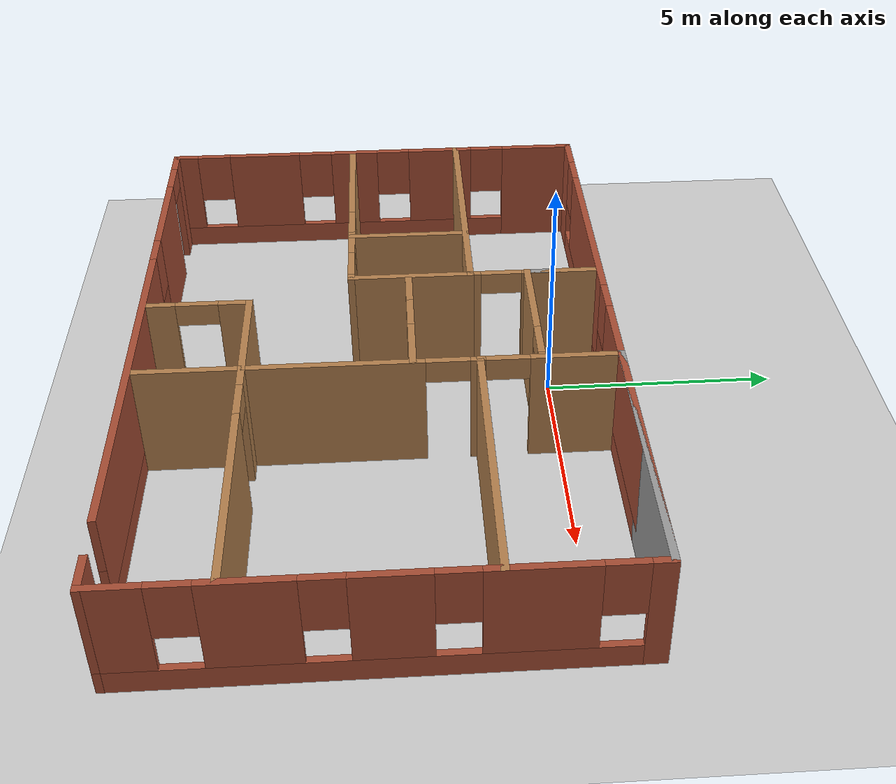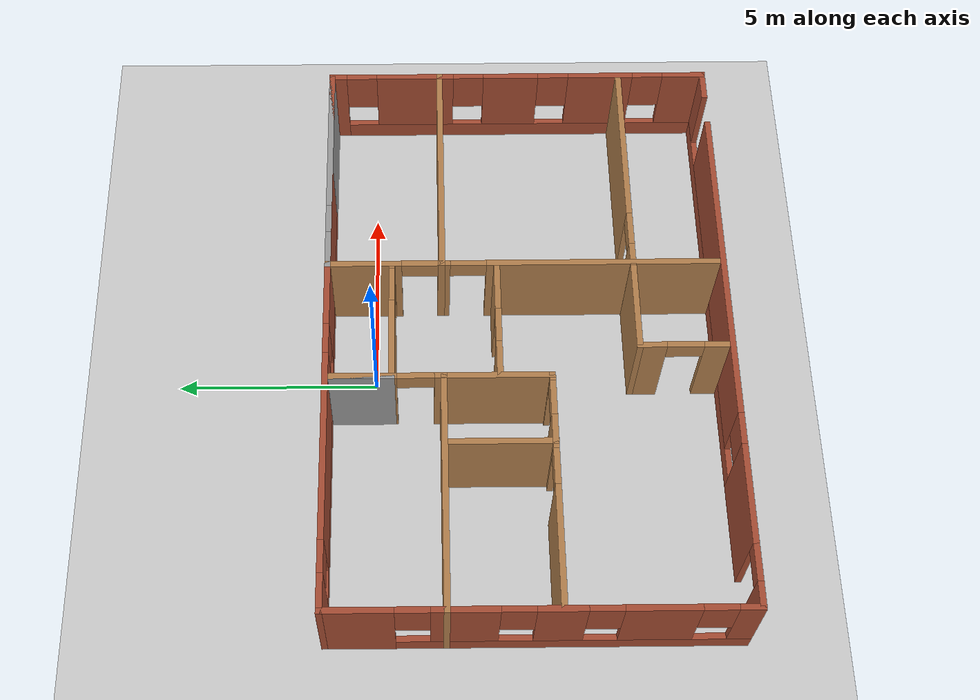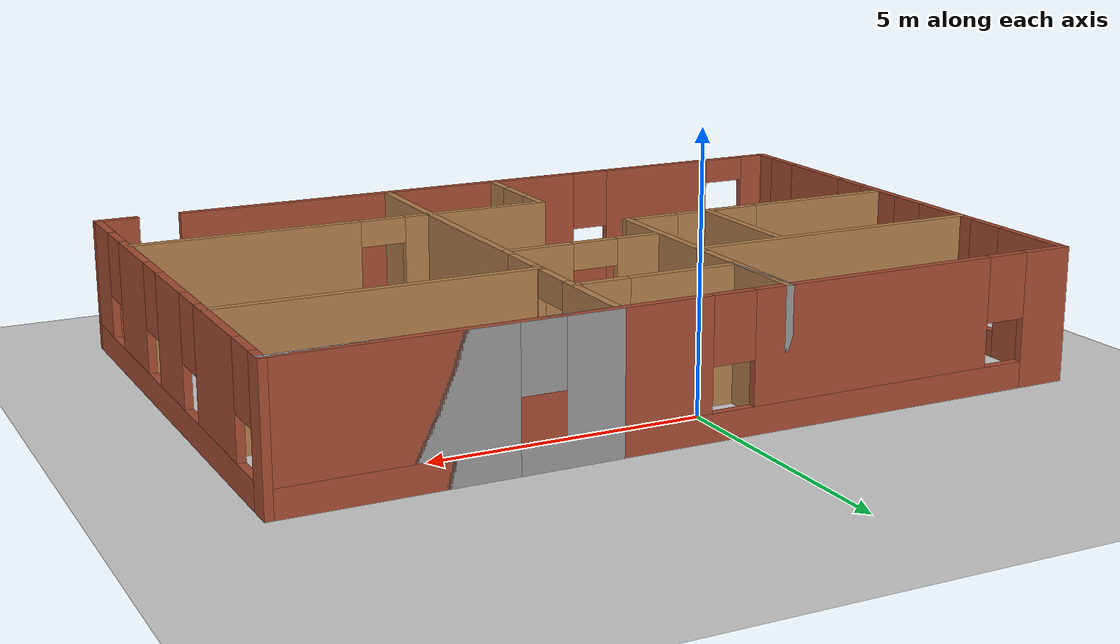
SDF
<sdf version="1.7">
 <world name="default">
  <model name="ground_plane">
   <static>1</static>
   <link name="link">
    <collision name="collision">
     <geometry><plane><normal>0 0 1</normal><size>100 100</size></plane></geometry>
     <surface>
      <contact><collide_bitmask>65535</collide_bitmask></contact>
      <friction><ode><mu>100</mu><mu2>50</mu2></ode></friction>
     </surface>
    </collision>
    <visual name="visual">
     <cast_shadows>0</cast_shadows>
     <geometry><plane><normal>0 0 1</normal><size>100 100</size></plane></geometry>
     <material>
      <script><uri>file://media/materials/scripts/gazebo.material</uri><name>Gazebo/Grey</name></script>
     </material>
    </visual>
   </link>
  </model>
  <model name="building">
   <pose>0.591 -3.76 0 0 -0 0</pose>
   <link name="Wall_0">
    <pose>-7.425 -0 0 0 -0 -1.5708</pose>
    <visual name="Wall_0_Visual_0">
     <pose>-4.12676 0 1.25 0 -0 0</pose>
     <geometry><box><size>1.74647 0.15 2.5</size></box></geometry>
     <material>
      <script><uri>file://media/materials/scripts/gazebo.material</uri><name>Gazebo/Bricks</name></script>
      <ambient>0.913725 0.72549 0.431373 1</ambient>
     </material>
     <meta><layer>0</layer></meta>
    </visual>
    <collision name="Wall_0_Collision_0">
     <geometry><box><size>1.74647 0.15 2.5</size></box></geometry>
     <pose>-4.12676 0 1.25 0 -0 0</pose>
    </collision>
    <visual name="Wall_0_Visual_1">
     <pose>0.873237 0 0.25 0 -0 0</pose>
     <geometry><box><size>8.25353 0.15 0.5</size></box></geometry>
     <material>
      <script><uri>file://media/materials/scripts/gazebo.material</uri><name>Gazebo/Bricks</name></script>
      <ambient>0.913725 0.72549 0.431373 1</ambient>
     </material>
     <meta><layer>0</layer></meta>
    </visual>
    <collision name="Wall_0_Collision_1">
     <geometry><box><size>8.25353 0.15 0.5</size></box></geometry>
     <pose>0.873237 0 0.25 0 -0 0</pose>
    </collision>
    <visual name="Wall_0_Visual_2">
     <pose>-1.66683 0 1.5 0 -0 0</pose>
     <geometry><box><size>1.5734 0.15 2</size></box></geometry>
     <material>
      <script><uri>file://media/materials/scripts/gazebo.material</uri><name>Gazebo/Bricks</name></script>
      <ambient>0.913725 0.72549 0.431373 1</ambient>
     </material>
     <meta><layer>0</layer></meta>
    </visual>
    <collision name="Wall_0_Collision_2">
     <geometry><box><size>1.5734 0.15 2</size></box></geometry>
     <pose>-1.66683 0 1.5 0 -0 0</pose>
    </collision>
    <visual name="Wall_0_Visual_3">
     <pose>0.495383 0 1.5 0 -0 0</pose>
     <geometry><box><size>1.15102 0.15 2</size></box></geometry>
     <material>
      <script><uri>file://media/materials/scripts/gazebo.material</uri><name>Gazebo/Bricks</name></script>
      <ambient>0.913725 0.72549 0.431373 1</ambient>
     </material>
     <meta><layer>0</layer></meta>
    </visual>
    <collision name="Wall_0_Collision_3">
     <geometry><box><size>1.15102 0.15 2</size></box></geometry>
     <pose>0.495383 0 1.5 0 -0 0</pose>
    </collision>
    <visual name="Wall_0_Visual_4">
     <pose>2.73805 0 1.5 0 -0 0</pose>
     <geometry><box><size>1.73431 0.15 2</size></box></geometry>
     <material>
      <script><uri>file://media/materials/scripts/gazebo.material</uri><name>Gazebo/Bricks</name></script>
      <ambient>0.913725 0.72549 0.431373 1</ambient>
     </material>
     <meta><layer>0</layer></meta>
    </visual>
    <collision name="Wall_0_Collision_4">
     <geometry><box><size>1.73431 0.15 2</size></box></geometry>
     <pose>2.73805 0 1.5 0 -0 0</pose>
    </collision>
    <visual name="Wall_0_Visual_5">
     <pose>4.7026 0 1.5 0 -0 0</pose>
     <geometry><box><size>0.594798 0.15 2</size></box></geometry>
     <material>
      <script><uri>file://media/materials/scripts/gazebo.material</uri><name>Gazebo/Bricks</name></script>
      <ambient>0.913725 0.72549 0.431373 1</ambient>
     </material>
     <meta><layer>0</layer></meta>
    </visual>
    <collision name="Wall_0_Collision_5">
     <geometry><box><size>0.594798 0.15 2</size></box></geometry>
     <pose>4.7026 0 1.5 0 -0 0</pose>
    </collision>
    <visual name="Wall_0_Visual_6">
     <pose>-2.85353 0 1.9 0 -0 0</pose>
     <geometry><box><size>0.8 0.15 1.2</size></box></geometry>
     <material>
      <script><uri>file://media/materials/scripts/gazebo.material</uri><name>Gazebo/Bricks</name></script>
      <ambient>0.913725 0.72549 0.431373 1</ambient>
     </material>
     <meta><layer>0</layer></meta>
    </visual>
    <collision name="Wall_0_Collision_6">
     <geometry><box><size>0.8 0.15 1.2</size></box></geometry>
     <pose>-2.85353 0 1.9 0 -0 0</pose>
    </collision>
    <visual name="Wall_0_Visual_7">
     <pose>-0.480125 0 1.9 0 -0 0</pose>
     <geometry><box><size>0.8 0.15 1.2</size></box></geometry>
     <material>
      <script><uri>file://media/materials/scripts/gazebo.material</uri><name>Gazebo/Bricks</name></script>
      <ambient>0.913725 0.72549 0.431373 1</ambient>
     </material>
     <meta><layer>0</layer></meta>
    </visual>
    <collision name="Wall_0_Collision_7">
     <geometry><box><size>0.8 0.15 1.2</size></box></geometry>
     <pose>-0.480125 0 1.9 0 -0 0</pose>
    </collision>
    <visual name="Wall_0_Visual_8">
     <pose>1.47089 0 1.9 0 -0 0</pose>
     <geometry><box><size>0.8 0.15 1.2</size></box></geometry>
     <material>
      <script><uri>file://media/materials/scripts/gazebo.material</uri><name>Gazebo/Bricks</name></script>
      <ambient>0.913725 0.72549 0.431373 1</ambient>
     </material>
     <meta><layer>0</layer></meta>
    </visual>
    <collision name="Wall_0_Collision_8">
     <geometry><box><size>0.8 0.15 1.2</size></box></geometry>
     <pose>1.47089 0 1.9 0 -0 0</pose>
    </collision>
    <visual name="Wall_0_Visual_9">
     <pose>4.0052 0 1.9 0 -0 0</pose>
     <geometry><box><size>0.8 0.15 1.2</size></box></geometry>
     <material>
      <script><uri>file://media/materials/scripts/gazebo.material</uri><name>Gazebo/Bricks</name></script>
      <ambient>0.913725 0.72549 0.431373 1</ambient>
     </material>
     <meta><layer>0</layer></meta>
    </visual>
    <collision name="Wall_0_Collision_9">
     <geometry><box><size>0.8 0.15 1.2</size></box></geometry>
     <pose>4.0052 0 1.9 0 -0 0</pose>
    </collision>
   </link>
   <link name="Wall_10">
    <collision name="Wall_10_Collision">
     <geometry><box><size>6 0.15 2.5</size></box></geometry>
     <pose>0 0 1.25 0 -0 0</pose>
    </collision>
    <visual name="Wall_10_Visual">
     <pose>0 0 1.25 0 -0 0</pose>
     <geometry><box><size>6 0.15 2.5</size></box></geometry>
     <material>
      <script><uri>file://media/materials/scripts/gazebo.material</uri><name>Gazebo/Wood</name></script>
      <ambient>0 0 0 1</ambient>
     </material>
     <meta><layer>0</layer></meta>
    </visual>
    <pose>-4.5 2.075 0 0 -0 3.14159</pose>
   </link>
   <link name="Wall_12">
    <pose>4.5 4.925 0 0 -0 3.14159</pose>
    <visual name="Wall_12_Visual_0">
     <pose>-0.916939 0 1.25 0 -0 0</pose>
     <geometry><box><size>4.16612 0.15 2.5</size></box></geometry>
     <material>
      <script><uri>file://media/materials/scripts/gazebo.material</uri><name>Gazebo/Grey</name></script>
      <ambient>1 1 1 1</ambient>
     </material>
     <meta><layer>0</layer></meta>
    </visual>
    <collision name="Wall_12_Collision_0">
     <geometry><box><size>4.16612 0.15 2.5</size></box></geometry>
     <pose>-0.916939 0 1.25 0 -0 0</pose>
    </collision>
    <visual name="Wall_12_Visual_1">
     <pose>2.08306 0 0.25 0 -0 0</pose>
     <geometry><box><size>1.83388 0.15 0.5</size></box></geometry>
     <material>
      <script><uri>file://media/materials/scripts/gazebo.material</uri><name>Gazebo/Grey</name></script>
      <ambient>1 1 1 1</ambient>
     </material>
     <meta><layer>0</layer></meta>
    </visual>
    <collision name="Wall_12_Collision_1">
     <geometry><box><size>1.83388 0.15 0.5</size></box></geometry>
     <pose>2.08306 0 0.25 0 -0 0</pose>
    </collision>
    <visual name="Wall_12_Visual_2">
     <pose>2.48306 0 1.5 0 -0 0</pose>
     <geometry><box><size>1.03388 0.15 2</size></box></geometry>
     <material>
      <script><uri>file://media/materials/scripts/gazebo.material</uri><name>Gazebo/Grey</name></script>
      <ambient>1 1 1 1</ambient>
     </material>
     <meta><layer>0</layer></meta>
    </visual>
    <collision name="Wall_12_Collision_2">
     <geometry><box><size>1.03388 0.15 2</size></box></geometry>
     <pose>2.48306 0 1.5 0 -0 0</pose>
    </collision>
    <visual name="Wall_12_Visual_3">
     <pose>1.56612 0 1.9 0 -0 0</pose>
     <geometry><box><size>0.8 0.15 1.2</size></box></geometry>
     <material>
      <script><uri>file://media/materials/scripts/gazebo.material</uri><name>Gazebo/Grey</name></script>
      <ambient>1 1 1 1</ambient>
     </material>
     <meta><layer>0</layer></meta>
    </visual>
    <collision name="Wall_12_Collision_3">
     <geometry><box><size>0.8 0.15 1.2</size></box></geometry>
     <pose>1.56612 0 1.9 0 -0 0</pose>
    </collision>
   </link>
   <link name="Wall_13">
    <pose>1.575 3.5 0 0 -0 -1.5708</pose>
    <visual name="Wall_13_Visual_0">
     <pose>-0.541139 0 1.25 0 -0 0</pose>
     <geometry><box><size>1.91772 0.15 2.5</size></box></geometry>
     <material>
      <script><uri>file://media/materials/scripts/gazebo.material</uri><name>Gazebo/Wood</name></script>
      <ambient>0 0 0 1</ambient>
     </material>
     <meta><layer>0</layer></meta>
    </visual>
    <collision name="Wall_13_Collision_0">
     <geometry><box><size>1.91772 0.15 2.5</size></box></geometry>
     <pose>-0.541139 0 1.25 0 -0 0</pose>
    </collision>
    <visual name="Wall_13_Visual_1">
     <pose>1.40886 0 1.25 0 -0 0</pose>
     <geometry><box><size>0.182277 0.15 2.5</size></box></geometry>
     <material>
      <script><uri>file://media/materials/scripts/gazebo.material</uri><name>Gazebo/Wood</name></script>
      <ambient>0 0 0 1</ambient>
     </material>
     <meta><layer>0</layer></meta>
    </visual>
    <collision name="Wall_13_Collision_1">
     <geometry><box><size>0.182277 0.15 2.5</size></box></geometry>
     <pose>1.40886 0 1.25 0 -0 0</pose>
    </collision>
    <visual name="Wall_13_Visual_2">
     <pose>0.867723 0 2.25 0 -0 0</pose>
     <geometry><box><size>0.9 0.15 0.5</size></box></geometry>
     <material>
      <script><uri>file://media/materials/scripts/gazebo.material</uri><name>Gazebo/Wood</name></script>
      <ambient>0 0 0 1</ambient>
     </material>
     <meta><layer>0</layer></meta>
    </visual>
    <collision name="Wall_13_Collision_2">
     <geometry><box><size>0.9 0.15 0.5</size></box></geometry>
     <pose>0.867723 0 2.25 0 -0 0</pose>
    </collision>
   </link>
   <link name="Wall_16">
    <collision name="Wall_16_Collision">
     <geometry><box><size>6 0.15 2.5</size></box></geometry>
     <pose>0 0 1.25 0 -0 0</pose>
    </collision>
    <visual name="Wall_16_Visual">
     <pose>0 0 1.25 0 -0 0</pose>
     <geometry><box><size>6 0.15 2.5</size></box></geometry>
     <material>
      <script><uri>file://media/materials/scripts/gazebo.material</uri><name>Gazebo/Wood</name></script>
      <ambient>0 0 0 1</ambient>
     </material>
     <meta><layer>0</layer></meta>
    </visual>
    <pose>4.5 2.075 0 0 -0 0</pose>
   </link>
   <link name="Wall_18">
    <collision name="Wall_18_Collision">
     <geometry><box><size>1.75 0.15 2.5</size></box></geometry>
     <pose>0 0 1.25 0 -0 0</pose>
    </collision>
    <visual name="Wall_18_Visual">
     <pose>0 0 1.25 0 -0 0</pose>
     <geometry><box><size>1.75 0.15 2.5</size></box></geometry>
     <material>
      <script><uri>file://media/materials/scripts/gazebo.material</uri><name>Gazebo/Grey</name></script>
      <ambient>1 1 1 1</ambient>
     </material>
     <meta><layer>0</layer></meta>
    </visual>
    <pose>-1.575 4.125 0 0 -0 -1.5708</pose>
   </link>
   <link name="Wall_19">
    <pose>-0.025 3.325 0 0 -0 0</pose>
    <visual name="Wall_19_Visual_0">
     <pose>-0.533569 0 1.25 0 -0 0</pose>
     <geometry><box><size>2.18286 0.15 2.5</size></box></geometry>
     <material>
      <script><uri>file://media/materials/scripts/gazebo.material</uri><name>Gazebo/Wood</name></script>
      <ambient>0 0 0 1</ambient>
     </material>
     <meta><layer>0</layer></meta>
    </visual>
    <collision name="Wall_19_Collision_0">
     <geometry><box><size>2.18286 0.15 2.5</size></box></geometry>
     <pose>-0.533569 0 1.25 0 -0 0</pose>
    </collision>
    <visual name="Wall_19_Visual_1">
     <pose>1.54143 0 1.25 0 -0 0</pose>
     <geometry><box><size>0.167139 0.15 2.5</size></box></geometry>
     <material>
      <script><uri>file://media/materials/scripts/gazebo.material</uri><name>Gazebo/Wood</name></script>
      <ambient>0 0 0 1</ambient>
     </material>
     <meta><layer>0</layer></meta>
    </visual>
    <collision name="Wall_19_Collision_1">
     <geometry><box><size>0.167139 0.15 2.5</size></box></geometry>
     <pose>1.54143 0 1.25 0 -0 0</pose>
    </collision>
    <visual name="Wall_19_Visual_2">
     <pose>1.00786 0 2.25 0 -0 0</pose>
     <geometry><box><size>0.9 0.15 0.5</size></box></geometry>
     <material>
      <script><uri>file://media/materials/scripts/gazebo.material</uri><name>Gazebo/Wood</name></script>
      <ambient>0 0 0 1</ambient>
     </material>
     <meta><layer>0</layer></meta>
    </visual>
    <collision name="Wall_19_Collision_2">
     <geometry><box><size>0.9 0.15 0.5</size></box></geometry>
     <pose>1.00786 0 2.25 0 -0 0</pose>
    </collision>
   </link>
   <link name="Wall_2">
    <pose>0 4.925 0 0 -0 0</pose>
    <visual name="Wall_2_Visual_0">
     <pose>-7.01867 0 1.25 0 -0 0</pose>
     <geometry><box><size>0.962657 0.15 2.5</size></box></geometry>
     <material>
      <script><uri>file://media/materials/scripts/gazebo.material</uri><name>Gazebo/Bricks</name></script>
      <ambient>0.435294 0.796078 0.67451 1</ambient>
     </material>
     <meta><layer>0</layer></meta>
    </visual>
    <collision name="Wall_2_Collision_0">
     <geometry><box><size>0.962657 0.15 2.5</size></box></geometry>
     <pose>-7.01867 0 1.25 0 -0 0</pose>
    </collision>
    <visual name="Wall_2_Visual_1">
     <pose>0.481329 0 0.25 0 -0 0</pose>
     <geometry><box><size>14.0373 0.15 0.5</size></box></geometry>
     <material>
      <script><uri>file://media/materials/scripts/gazebo.material</uri><name>Gazebo/Bricks</name></script>
      <ambient>0.435294 0.796078 0.67451 1</ambient>
     </material>
     <meta><layer>0</layer></meta>
    </visual>
    <collision name="Wall_2_Collision_1">
     <geometry><box><size>14.0373 0.15 0.5</size></box></geometry>
     <pose>0.481329 0 0.25 0 -0 0</pose>
    </collision>
    <visual name="Wall_2_Visual_2">
     <pose>-3.3315 0 1.5 0 -0 0</pose>
     <geometry><box><size>4.81169 0.15 2</size></box></geometry>
     <material>
      <script><uri>file://media/materials/scripts/gazebo.material</uri><name>Gazebo/Bricks</name></script>
      <ambient>0.435294 0.796078 0.67451 1</ambient>
     </material>
     <meta><layer>0</layer></meta>
    </visual>
    <collision name="Wall_2_Collision_2">
     <geometry><box><size>4.81169 0.15 2</size></box></geometry>
     <pose>-3.3315 0 1.5 0 -0 0</pose>
    </collision>
    <visual name="Wall_2_Visual_3">
     <pose>3.68717 0 1.5 0 -0 0</pose>
     <geometry><box><size>7.62566 0.15 2</size></box></geometry>
     <material>
      <script><uri>file://media/materials/scripts/gazebo.material</uri><name>Gazebo/Bricks</name></script>
      <ambient>0.435294 0.796078 0.67451 1</ambient>
     </material>
     <meta><layer>0</layer></meta>
    </visual>
    <collision name="Wall_2_Collision_3">
     <geometry><box><size>7.62566 0.15 2</size></box></geometry>
     <pose>3.68717 0 1.5 0 -0 0</pose>
    </collision>
    <visual name="Wall_2_Visual_4">
     <pose>-6.13734 0 1.9 0 -0 0</pose>
     <geometry><box><size>0.8 0.15 1.2</size></box></geometry>
     <material>
      <script><uri>file://media/materials/scripts/gazebo.material</uri><name>Gazebo/Bricks</name></script>
      <ambient>0.435294 0.796078 0.67451 1</ambient>
     </material>
     <meta><layer>0</layer></meta>
    </visual>
    <collision name="Wall_2_Collision_4">
     <geometry><box><size>0.8 0.15 1.2</size></box></geometry>
     <pose>-6.13734 0 1.9 0 -0 0</pose>
    </collision>
    <visual name="Wall_2_Visual_5">
     <pose>-0.525656 0 1.9 0 -0 0</pose>
     <geometry><box><size>0.8 0.15 1.2</size></box></geometry>
     <material>
      <script><uri>file://media/materials/scripts/gazebo.material</uri><name>Gazebo/Bricks</name></script>
      <ambient>0.435294 0.796078 0.67451 1</ambient>
     </material>
     <meta><layer>0</layer></meta>
    </visual>
    <collision name="Wall_2_Collision_5">
     <geometry><box><size>0.8 0.15 1.2</size></box></geometry>
     <pose>-0.525656 0 1.9 0 -0 0</pose>
    </collision>
   </link>
   <link name="Wall_21">
    <collision name="Wall_21_Collision">
     <geometry><box><size>2.75 0.15 2.5</size></box></geometry>
     <pose>0 0 1.25 0 -0 0</pose>
    </collision>
    <visual name="Wall_21_Visual">
     <pose>0 0 1.25 0 -0 0</pose>
     <geometry><box><size>2.75 0.15 2.5</size></box></geometry>
     <material>
      <script><uri>file://media/materials/scripts/gazebo.material</uri><name>Gazebo/Wood</name></script>
      <ambient>0 0 0 1</ambient>
     </material>
     <meta><layer>0</layer></meta>
    </visual>
    <pose>-1.575 0.775 0 0 -0 -1.5708</pose>
   </link>
   <link name="Wall_22">
    <pose>-4.5 -0.525 0 0 -0 3.14159</pose>
    <visual name="Wall_22_Visual_0">
     <pose>-2.88752 0 1.25 0 -0 0</pose>
     <geometry><box><size>0.224969 0.15 2.5</size></box></geometry>
     <material>
      <script><uri>file://media/materials/scripts/gazebo.material</uri><name>Gazebo/Wood</name></script>
      <ambient>0 0 0 1</ambient>
     </material>
     <meta><layer>0</layer></meta>
    </visual>
    <collision name="Wall_22_Collision_0">
     <geometry><box><size>0.224969 0.15 2.5</size></box></geometry>
     <pose>-2.88752 0 1.25 0 -0 0</pose>
    </collision>
    <visual name="Wall_22_Visual_1">
     <pose>-1.42998 0 1.25 0 -0 0</pose>
     <geometry><box><size>0.890108 0.15 2.5</size></box></geometry>
     <material>
      <script><uri>file://media/materials/scripts/gazebo.material</uri><name>Gazebo/Wood</name></script>
      <ambient>0 0 0 1</ambient>
     </material>
     <meta><layer>0</layer></meta>
    </visual>
    <collision name="Wall_22_Collision_1">
     <geometry><box><size>0.890108 0.15 2.5</size></box></geometry>
     <pose>-1.42998 0 1.25 0 -0 0</pose>
    </collision>
    <visual name="Wall_22_Visual_2">
     <pose>1.45754 0 1.25 0 -0 0</pose>
     <geometry><box><size>3.08492 0.15 2.5</size></box></geometry>
     <material>
      <script><uri>file://media/materials/scripts/gazebo.material</uri><name>Gazebo/Wood</name></script>
      <ambient>0 0 0 1</ambient>
     </material>
     <meta><layer>0</layer></meta>
    </visual>
    <collision name="Wall_22_Collision_2">
     <geometry><box><size>3.08492 0.15 2.5</size></box></geometry>
     <pose>1.45754 0 1.25 0 -0 0</pose>
    </collision>
    <visual name="Wall_22_Visual_3">
     <pose>-2.32503 0 2.25 0 -0 0</pose>
     <geometry><box><size>0.9 0.15 0.5</size></box></geometry>
     <material>
      <script><uri>file://media/materials/scripts/gazebo.material</uri><name>Gazebo/Wood</name></script>
      <ambient>0 0 0 1</ambient>
     </material>
     <meta><layer>0</layer></meta>
    </visual>
    <collision name="Wall_22_Collision_3">
     <geometry><box><size>0.9 0.15 0.5</size></box></geometry>
     <pose>-2.32503 0 2.25 0 -0 0</pose>
    </collision>
    <visual name="Wall_22_Visual_4">
     <pose>-0.534923 0 2.25 0 -0 0</pose>
     <geometry><box><size>0.9 0.15 0.5</size></box></geometry>
     <material>
      <script><uri>file://media/materials/scripts/gazebo.material</uri><name>Gazebo/Wood</name></script>
      <ambient>0 0 0 1</ambient>
     </material>
     <meta><layer>0</layer></meta>
    </visual>
    <collision name="Wall_22_Collision_4">
     <geometry><box><size>0.9 0.15 0.5</size></box></geometry>
     <pose>-0.534923 0 2.25 0 -0 0</pose>
    </collision>
   </link>
   <link name="Wall_26">
    <collision name="Wall_26_Collision">
     <geometry><box><size>2.75 0.15 2.5</size></box></geometry>
     <pose>0 0 1.25 0 -0 0</pose>
    </collision>
    <visual name="Wall_26_Visual">
     <pose>0 0 1.25 0 -0 0</pose>
     <geometry><box><size>2.75 0.15 2.5</size></box></geometry>
     <material>
      <script><uri>file://media/materials/scripts/gazebo.material</uri><name>Gazebo/Wood</name></script>
      <ambient>0 0 0 1</ambient>
     </material>
     <meta><layer>0</layer></meta>
    </visual>
    <pose>-3.32144 0.769097 0 0 -0 -1.5708</pose>
   </link>
   <link name="Wall_28">
    <pose>1.575 -1.35 0 0 -0 -1.5708</pose>
    <visual name="Wall_28_Visual_0">
     <pose>-3.36273 0 1.25 0 -0 0</pose>
     <geometry><box><size>0.274537 0.15 2.5</size></box></geometry>
     <material>
      <script><uri>file://media/materials/scripts/gazebo.material</uri><name>Gazebo/Wood</name></script>
      <ambient>0 0 0 1</ambient>
     </material>
     <meta><layer>0</layer></meta>
    </visual>
    <collision name="Wall_28_Collision_0">
     <geometry><box><size>0.274537 0.15 2.5</size></box></geometry>
     <pose>-3.36273 0 1.25 0 -0 0</pose>
    </collision>
    <visual name="Wall_28_Visual_1">
     <pose>0.587269 0 1.25 0 -0 0</pose>
     <geometry><box><size>5.82546 0.15 2.5</size></box></geometry>
     <material>
      <script><uri>file://media/materials/scripts/gazebo.material</uri><name>Gazebo/Wood</name></script>
      <ambient>0 0 0 1</ambient>
     </material>
     <meta><layer>0</layer></meta>
    </visual>
    <collision name="Wall_28_Collision_1">
     <geometry><box><size>5.82546 0.15 2.5</size></box></geometry>
     <pose>0.587269 0 1.25 0 -0 0</pose>
    </collision>
    <visual name="Wall_28_Visual_2">
     <pose>-2.77546 0 2.25 0 -0 0</pose>
     <geometry><box><size>0.9 0.15 0.5</size></box></geometry>
     <material>
      <script><uri>file://media/materials/scripts/gazebo.material</uri><name>Gazebo/Wood</name></script>
      <ambient>0 0 0 1</ambient>
     </material>
     <meta><layer>0</layer></meta>
    </visual>
    <collision name="Wall_28_Collision_2">
     <geometry><box><size>0.9 0.15 0.5</size></box></geometry>
     <pose>-2.77546 0 2.25 0 -0 0</pose>
    </collision>
   </link>
   <link name="Wall_31">
    <pose>-0.001448 0.721488 0 0 -0 0</pose>
    <visual name="Wall_31_Visual_0">
     <pose>-1.12864 0 1.25 0 -0 0</pose>
     <geometry><box><size>0.992723 0.15 2.5</size></box></geometry>
     <material>
      <script><uri>file://media/materials/scripts/gazebo.material</uri><name>Gazebo/Wood</name></script>
      <ambient>0 0 0 1</ambient>
     </material>
     <meta><layer>0</layer></meta>
    </visual>
    <collision name="Wall_31_Collision_0">
     <geometry><box><size>0.992723 0.15 2.5</size></box></geometry>
     <pose>-1.12864 0 1.25 0 -0 0</pose>
    </collision>
    <visual name="Wall_31_Visual_1">
     <pose>0.946361 0 1.25 0 -0 0</pose>
     <geometry><box><size>1.35728 0.15 2.5</size></box></geometry>
     <material>
      <script><uri>file://media/materials/scripts/gazebo.material</uri><name>Gazebo/Wood</name></script>
      <ambient>0 0 0 1</ambient>
     </material>
     <meta><layer>0</layer></meta>
    </visual>
    <collision name="Wall_31_Collision_1">
     <geometry><box><size>1.35728 0.15 2.5</size></box></geometry>
     <pose>0.946361 0 1.25 0 -0 0</pose>
    </collision>
    <visual name="Wall_31_Visual_2">
     <pose>-0.182277 0 2.25 0 -0 0</pose>
     <geometry><box><size>0.9 0.15 0.5</size></box></geometry>
     <material>
      <script><uri>file://media/materials/scripts/gazebo.material</uri><name>Gazebo/Wood</name></script>
      <ambient>0 0 0 1</ambient>
     </material>
     <meta><layer>0</layer></meta>
    </visual>
    <collision name="Wall_31_Collision_2">
     <geometry><box><size>0.9 0.15 0.5</size></box></geometry>
     <pose>-0.182277 0 2.25 0 -0 0</pose>
    </collision>
   </link>
   <link name="Wall_33">
    <pose>4.49116 -2.67771 0 0 -0 0</pose>
    <visual name="Wall_33_Visual_0">
     <pose>-2.68466 0 1.25 0 -0 0</pose>
     <geometry><box><size>0.630678 0.15 2.5</size></box></geometry>
     <material>
      <script><uri>file://media/materials/scripts/gazebo.material</uri><name>Gazebo/Wood</name></script>
      <ambient>0 0 0 1</ambient>
     </material>
     <meta><layer>0</layer></meta>
    </visual>
    <collision name="Wall_33_Collision_0">
     <geometry><box><size>0.630678 0.15 2.5</size></box></geometry>
     <pose>-2.68466 0 1.25 0 -0 0</pose>
    </collision>
    <visual name="Wall_33_Visual_1">
     <pose>0.765339 0 1.25 0 -0 0</pose>
     <geometry><box><size>4.46932 0.15 2.5</size></box></geometry>
     <material>
      <script><uri>file://media/materials/scripts/gazebo.material</uri><name>Gazebo/Wood</name></script>
      <ambient>0 0 0 1</ambient>
     </material>
     <meta><layer>0</layer></meta>
    </visual>
    <collision name="Wall_33_Collision_1">
     <geometry><box><size>4.46932 0.15 2.5</size></box></geometry>
     <pose>0.765339 0 1.25 0 -0 0</pose>
    </collision>
    <visual name="Wall_33_Visual_2">
     <pose>-1.91932 0 2.25 0 -0 0</pose>
     <geometry><box><size>0.9 0.15 0.5</size></box></geometry>
     <material>
      <script><uri>file://media/materials/scripts/gazebo.material</uri><name>Gazebo/Wood</name></script>
      <ambient>0 0 0 1</ambient>
     </material>
     <meta><layer>0</layer></meta>
    </visual>
    <collision name="Wall_33_Collision_2">
     <geometry><box><size>0.9 0.15 0.5</size></box></geometry>
     <pose>-1.91932 0 2.25 0 -0 0</pose>
    </collision>
   </link>
   <link name="Wall_35">
    <collision name="Wall_35_Collision">
     <geometry><box><size>2.5 0.15 2.5</size></box></geometry>
     <pose>0 0 1.25 0 -0 0</pose>
    </collision>
    <visual name="Wall_35_Visual">
     <pose>0 0 1.25 0 -0 0</pose>
     <geometry><box><size>2.5 0.15 2.5</size></box></geometry>
     <material>
      <script><uri>file://media/materials/scripts/gazebo.material</uri><name>Gazebo/Wood</name></script>
      <ambient>0 0 0 1</ambient>
     </material>
     <meta><layer>0</layer></meta>
    </visual>
    <pose>0.391155 -2.67771 0 0 -0 3.14159</pose>
   </link>
   <link name="Wall_36">
    <pose>-0.783845 -3.72771 0 0 -0 -1.5708</pose>
    <visual name="Wall_36_Visual_0">
     <pose>-0.759377 0 1.25 0 -0 0</pose>
     <geometry><box><size>0.731247 0.15 2.5</size></box></geometry>
     <material>
      <script><uri>file://media/materials/scripts/gazebo.material</uri><name>Gazebo/Wood</name></script>
      <ambient>0 0 0 1</ambient>
     </material>
     <meta><layer>0</layer></meta>
    </visual>
    <collision name="Wall_36_Collision_0">
     <geometry><box><size>0.731247 0.15 2.5</size></box></geometry>
     <pose>-0.759377 0 1.25 0 -0 0</pose>
    </collision>
    <visual name="Wall_36_Visual_1">
     <pose>0.815623 0 1.25 0 -0 0</pose>
     <geometry><box><size>0.618753 0.15 2.5</size></box></geometry>
     <material>
      <script><uri>file://media/materials/scripts/gazebo.material</uri><name>Gazebo/Wood</name></script>
      <ambient>0 0 0 1</ambient>
     </material>
     <meta><layer>0</layer></meta>
    </visual>
    <collision name="Wall_36_Collision_1">
     <geometry><box><size>0.618753 0.15 2.5</size></box></geometry>
     <pose>0.815623 0 1.25 0 -0 0</pose>
    </collision>
    <visual name="Wall_36_Visual_2">
     <pose>0.056247 0 2.25 0 -0 0</pose>
     <geometry><box><size>0.9 0.15 0.5</size></box></geometry>
     <material>
      <script><uri>file://media/materials/scripts/gazebo.material</uri><name>Gazebo/Wood</name></script>
      <ambient>0 0 0 1</ambient>
     </material>
     <meta><layer>0</layer></meta>
    </visual>
    <collision name="Wall_36_Collision_2">
     <geometry><box><size>0.9 0.15 0.5</size></box></geometry>
     <pose>0.056247 0 2.25 0 -0 0</pose>
    </collision>
   </link>
   <link name="Wall_4">
    <pose>7.425 -0 0 0 -0 -1.5708</pose>
    <visual name="Wall_4_Visual_0">
     <pose>-4.7704 0 1.25 0 -0 0</pose>
     <geometry><box><size>0.459205 0.15 2.5</size></box></geometry>
     <material>
      <script><uri>file://media/materials/scripts/gazebo.material</uri><name>Gazebo/Bricks</name></script>
      <ambient>0.913725 0.72549 0.431373 1</ambient>
     </material>
     <meta><layer>0</layer></meta>
    </visual>
    <collision name="Wall_4_Collision_0">
     <geometry><box><size>0.459205 0.15 2.5</size></box></geometry>
     <pose>-4.7704 0 1.25 0 -0 0</pose>
    </collision>
    <visual name="Wall_4_Visual_1">
     <pose>0.229603 0 0.25 0 -0 0</pose>
     <geometry><box><size>9.54079 0.15 0.5</size></box></geometry>
     <material>
      <script><uri>file://media/materials/scripts/gazebo.material</uri><name>Gazebo/Bricks</name></script>
      <ambient>0.913725 0.72549 0.431373 1</ambient>
     </material>
     <meta><layer>0</layer></meta>
    </visual>
    <collision name="Wall_4_Collision_1">
     <geometry><box><size>9.54079 0.15 0.5</size></box></geometry>
     <pose>0.229603 0 0.25 0 -0 0</pose>
    </collision>
    <visual name="Wall_4_Visual_2">
     <pose>-2.72279 0 1.5 0 -0 0</pose>
     <geometry><box><size>2.03601 0.15 2</size></box></geometry>
     <material>
      <script><uri>file://media/materials/scripts/gazebo.material</uri><name>Gazebo/Bricks</name></script>
      <ambient>0.913725 0.72549 0.431373 1</ambient>
     </material>
     <meta><layer>0</layer></meta>
    </visual>
    <collision name="Wall_4_Collision_2">
     <geometry><box><size>2.03601 0.15 2</size></box></geometry>
     <pose>-2.72279 0 1.5 0 -0 0</pose>
    </collision>
    <visual name="Wall_4_Visual_3">
     <pose>-0.178421 0 1.5 0 -0 0</pose>
     <geometry><box><size>1.45272 0.15 2</size></box></geometry>
     <material>
      <script><uri>file://media/materials/scripts/gazebo.material</uri><name>Gazebo/Bricks</name></script>
      <ambient>0.913725 0.72549 0.431373 1</ambient>
     </material>
     <meta><layer>0</layer></meta>
    </visual>
    <collision name="Wall_4_Collision_3">
     <geometry><box><size>1.45272 0.15 2</size></box></geometry>
     <pose>-0.178421 0 1.5 0 -0 0</pose>
    </collision>
    <visual name="Wall_4_Visual_4">
     <pose>2.20504 0 1.5 0 -0 0</pose>
     <geometry><box><size>1.7142 0.15 2</size></box></geometry>
     <material>
      <script><uri>file://media/materials/scripts/gazebo.material</uri><name>Gazebo/Bricks</name></script>
      <ambient>0.913725 0.72549 0.431373 1</ambient>
     </material>
     <meta><layer>0</layer></meta>
    </visual>
    <collision name="Wall_4_Collision_4">
     <geometry><box><size>1.7142 0.15 2</size></box></geometry>
     <pose>2.20504 0 1.5 0 -0 0</pose>
    </collision>
    <visual name="Wall_4_Visual_5">
     <pose>4.43107 0 1.5 0 -0 0</pose>
     <geometry><box><size>1.13786 0.15 2</size></box></geometry>
     <material>
      <script><uri>file://media/materials/scripts/gazebo.material</uri><name>Gazebo/Bricks</name></script>
      <ambient>0.913725 0.72549 0.431373 1</ambient>
     </material>
     <meta><layer>0</layer></meta>
    </visual>
    <collision name="Wall_4_Collision_5">
     <geometry><box><size>1.13786 0.15 2</size></box></geometry>
     <pose>4.43107 0 1.5 0 -0 0</pose>
    </collision>
    <visual name="Wall_4_Visual_6">
     <pose>-4.14079 0 1.9 0 -0 0</pose>
     <geometry><box><size>0.8 0.15 1.2</size></box></geometry>
     <material>
      <script><uri>file://media/materials/scripts/gazebo.material</uri><name>Gazebo/Bricks</name></script>
      <ambient>0.913725 0.72549 0.431373 1</ambient>
     </material>
     <meta><layer>0</layer></meta>
    </visual>
    <collision name="Wall_4_Collision_6">
     <geometry><box><size>0.8 0.15 1.2</size></box></geometry>
     <pose>-4.14079 0 1.9 0 -0 0</pose>
    </collision>
    <visual name="Wall_4_Visual_7">
     <pose>-1.30478 0 1.9 0 -0 0</pose>
     <geometry><box><size>0.8 0.15 1.2</size></box></geometry>
     <material>
      <script><uri>file://media/materials/scripts/gazebo.material</uri><name>Gazebo/Bricks</name></script>
      <ambient>0.913725 0.72549 0.431373 1</ambient>
     </material>
     <meta><layer>0</layer></meta>
    </visual>
    <collision name="Wall_4_Collision_7">
     <geometry><box><size>0.8 0.15 1.2</size></box></geometry>
     <pose>-1.30478 0 1.9 0 -0 0</pose>
    </collision>
    <visual name="Wall_4_Visual_8">
     <pose>0.947939 0 1.9 0 -0 0</pose>
     <geometry><box><size>0.8 0.15 1.2</size></box></geometry>
     <material>
      <script><uri>file://media/materials/scripts/gazebo.material</uri><name>Gazebo/Bricks</name></script>
      <ambient>0.913725 0.72549 0.431373 1</ambient>
     </material>
     <meta><layer>0</layer></meta>
    </visual>
    <collision name="Wall_4_Collision_8">
     <geometry><box><size>0.8 0.15 1.2</size></box></geometry>
     <pose>0.947939 0 1.9 0 -0 0</pose>
    </collision>
    <visual name="Wall_4_Visual_9">
     <pose>3.46213 0 1.9 0 -0 0</pose>
     <geometry><box><size>0.8 0.15 1.2</size></box></geometry>
     <material>
      <script><uri>file://media/materials/scripts/gazebo.material</uri><name>Gazebo/Bricks</name></script>
      <ambient>0.913725 0.72549 0.431373 1</ambient>
     </material>
     <meta><layer>0</layer></meta>
    </visual>
    <collision name="Wall_4_Collision_9">
     <geometry><box><size>0.8 0.15 1.2</size></box></geometry>
     <pose>3.46213 0 1.9 0 -0 0</pose>
    </collision>
   </link>
   <link name="Wall_6">
    <pose>0 -4.925 0 0 -0 0</pose>
    <visual name="Wall_6_Visual_0">
     <pose>-7.16435 0 1.25 0 -0 0</pose>
     <geometry><box><size>0.671294 0.15 2.5</size></box></geometry>
     <material>
      <script><uri>file://media/materials/scripts/gazebo.material</uri><name>Gazebo/Bricks</name></script>
      <ambient>0.913725 0.72549 0.431373 1</ambient>
     </material>
     <meta><layer>0</layer></meta>
    </visual>
    <collision name="Wall_6_Collision_0">
     <geometry><box><size>0.671294 0.15 2.5</size></box></geometry>
     <pose>-7.16435 0 1.25 0 -0 0</pose>
    </collision>
    <visual name="Wall_6_Visual_1">
     <pose>-4.68428 0 1.25 0 -0 0</pose>
     <geometry><box><size>2.48885 0.15 2.5</size></box></geometry>
     <material>
      <script><uri>file://media/materials/scripts/gazebo.material</uri><name>Gazebo/Bricks</name></script>
      <ambient>0.913725 0.72549 0.431373 1</ambient>
     </material>
     <meta><layer>0</layer></meta>
    </visual>
    <collision name="Wall_6_Collision_1">
     <geometry><box><size>2.48885 0.15 2.5</size></box></geometry>
     <pose>-4.68428 0 1.25 0 -0 0</pose>
    </collision>
    <visual name="Wall_6_Visual_2">
     <pose>2.03007 0 0.25 0 -0 0</pose>
     <geometry><box><size>10.9399 0.15 0.5</size></box></geometry>
     <material>
      <script><uri>file://media/materials/scripts/gazebo.material</uri><name>Gazebo/Bricks</name></script>
      <ambient>0.913725 0.72549 0.431373 1</ambient>
     </material>
     <meta><layer>0</layer></meta>
    </visual>
    <collision name="Wall_6_Collision_2">
     <geometry><box><size>10.9399 0.15 0.5</size></box></geometry>
     <pose>2.03007 0 0.25 0 -0 0</pose>
    </collision>
    <visual name="Wall_6_Visual_3">
     <pose>1.60638 0 1.5 0 -0 0</pose>
     <geometry><box><size>8.49247 0.15 2</size></box></geometry>
     <material>
      <script><uri>file://media/materials/scripts/gazebo.material</uri><name>Gazebo/Bricks</name></script>
      <ambient>0.913725 0.72549 0.431373 1</ambient>
     </material>
     <meta><layer>0</layer></meta>
    </visual>
    <collision name="Wall_6_Collision_3">
     <geometry><box><size>8.49247 0.15 2</size></box></geometry>
     <pose>1.60638 0 1.5 0 -0 0</pose>
    </collision>
    <visual name="Wall_6_Visual_4">
     <pose>7.07631 0 1.5 0 -0 0</pose>
     <geometry><box><size>0.847383 0.15 2</size></box></geometry>
     <material>
      <script><uri>file://media/materials/scripts/gazebo.material</uri><name>Gazebo/Bricks</name></script>
      <ambient>0.913725 0.72549 0.431373 1</ambient>
     </material>
     <meta><layer>0</layer></meta>
    </visual>
    <collision name="Wall_6_Collision_4">
     <geometry><box><size>0.847383 0.15 2</size></box></geometry>
     <pose>7.07631 0 1.5 0 -0 0</pose>
    </collision>
    <visual name="Wall_6_Visual_5">
     <pose>-3.03985 0 1.9 0 -0 0</pose>
     <geometry><box><size>0.8 0.15 1.2</size></box></geometry>
     <material>
      <script><uri>file://media/materials/scripts/gazebo.material</uri><name>Gazebo/Bricks</name></script>
      <ambient>0.913725 0.72549 0.431373 1</ambient>
     </material>
     <meta><layer>0</layer></meta>
    </visual>
    <collision name="Wall_6_Collision_5">
     <geometry><box><size>0.8 0.15 1.2</size></box></geometry>
     <pose>-3.03985 0 1.9 0 -0 0</pose>
    </collision>
    <visual name="Wall_6_Visual_6">
     <pose>5.85262 0 1.9 0 -0 0</pose>
     <geometry><box><size>0 0.15 1.2</size></box></geometry>
     <material>
      <script><uri>file://media/materials/scripts/gazebo.material</uri><name>Gazebo/Bricks</name></script>
      <ambient>0.913725 0.72549 0.431373 1</ambient>
     </material>
     <meta><layer>0</layer></meta>
    </visual>
    <collision name="Wall_6_Collision_6">
     <geometry><box><size>0 0.15 1.2</size></box></geometry>
     <pose>5.85262 0 1.9 0 -0 0</pose>
    </collision>
    <visual name="Wall_6_Visual_7">
     <pose>-6.37871 0 2.25 0 -0 0</pose>
     <geometry><box><size>0.9 0.15 0.5</size></box></geometry>
     <material>
      <script><uri>file://media/materials/scripts/gazebo.material</uri><name>Gazebo/Bricks</name></script>
      <ambient>0.913725 0.72549 0.431373 1</ambient>
     </material>
     <meta><layer>0</layer></meta>
    </visual>
    <collision name="Wall_6_Collision_7">
     <geometry><box><size>0.9 0.15 0.5</size></box></geometry>
     <pose>-6.37871 0 2.25 0 -0 0</pose>
    </collision>
   </link>
   <link name="Wall_9">
    <pose>-1.575 3.5 0 0 -0 -1.5708</pose>
    <visual name="Wall_9_Visual_0">
     <pose>-0.601479 0 1.25 0 -0 0</pose>
     <geometry><box><size>1.79704 0.15 2.5</size></box></geometry>
     <material>
      <script><uri>file://media/materials/scripts/gazebo.material</uri><name>Gazebo/Wood</name></script>
      <ambient>0 0 0 1</ambient>
     </material>
     <meta><layer>0</layer></meta>
    </visual>
    <collision name="Wall_9_Collision_0">
     <geometry><box><size>1.79704 0.15 2.5</size></box></geometry>
     <pose>-0.601479 0 1.25 0 -0 0</pose>
    </collision>
    <visual name="Wall_9_Visual_1">
     <pose>1.34852 0 1.25 0 -0 0</pose>
     <geometry><box><size>0.302959 0.15 2.5</size></box></geometry>
     <material>
      <script><uri>file://media/materials/scripts/gazebo.material</uri><name>Gazebo/Wood</name></script>
      <ambient>0 0 0 1</ambient>
     </material>
     <meta><layer>0</layer></meta>
    </visual>
    <collision name="Wall_9_Collision_1">
     <geometry><box><size>0.302959 0.15 2.5</size></box></geometry>
     <pose>1.34852 0 1.25 0 -0 0</pose>
    </collision>
    <visual name="Wall_9_Visual_2">
     <pose>0.747041 0 2.25 0 -0 0</pose>
     <geometry><box><size>0.9 0.15 0.5</size></box></geometry>
     <material>
      <script><uri>file://media/materials/scripts/gazebo.material</uri><name>Gazebo/Wood</name></script>
      <ambient>0 0 0 1</ambient>
     </material>
     <meta><layer>0</layer></meta>
    </visual>
    <collision name="Wall_9_Collision_2">
     <geometry><box><size>0.9 0.15 0.5</size></box></geometry>
     <pose>0.747041 0 2.25 0 -0 0</pose>
    </collision>
   </link>
   <static>1</static>
  </model>
 </world>
</sdf>
